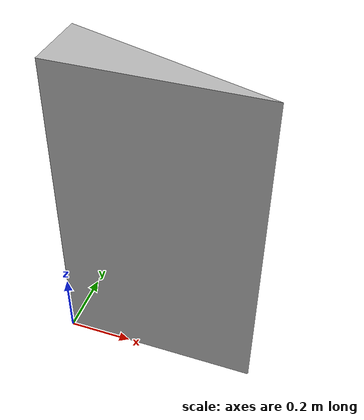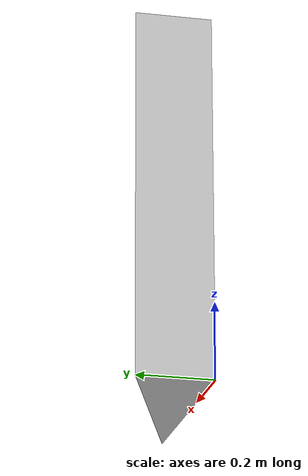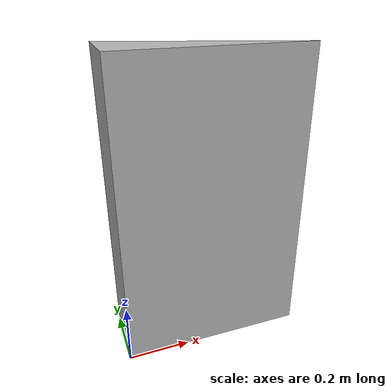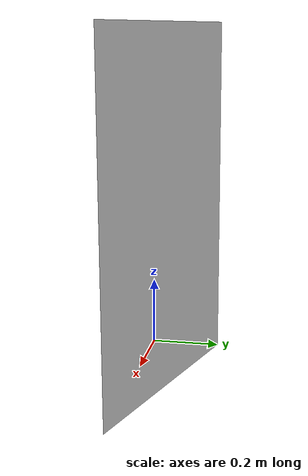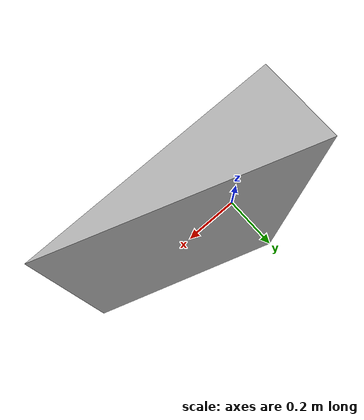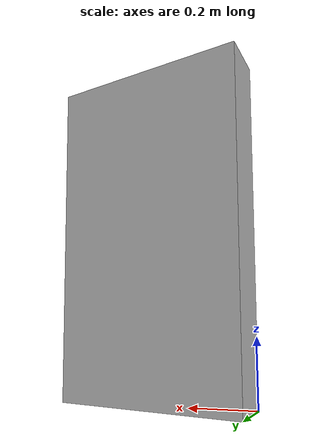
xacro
<?xml version="1.0" ?>
<robot name="Bridge" xmlns:xacro="http://www.ros.org/wiki/xacro">

<xacro:include filename="$(find Bridge_description)/urdf/materials.xacro" />
<xacro:include filename="$(find Bridge_description)/urdf/Bridge.trans" />
<xacro:include filename="$(find Bridge_description)/urdf/Bridge.gazebo" />
<link name="base_link">
  <inertial>
    <origin xyz="0.2 0.0666666666666667 0.4875" rpy="0 0 0"/>
    <mass value="459.225"/>
    <inertia ixx="37.39973" iyy="45.56373" izz="10.205" ixy="1.53075" iyz="0.0" ixz="0.0"/>
  </inertial>
  <visual>
    <origin xyz="0 0 0" rpy="0 0 0"/>
    <geometry>
      <mesh filename="package://Bridge_description/meshes/base_link.stl" scale="0.001 0.001 0.001"/>
    </geometry>
    <material name="silver"/>
  </visual>
  <collision>
    <origin xyz="0 0 0" rpy="0 0 0"/>
    <geometry>
      <mesh filename="package://Bridge_description/meshes/base_link.stl" scale="0.001 0.001 0.001"/>
    </geometry>
  </collision>
</link>

</robot>

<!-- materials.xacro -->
<robot name="Bridge" xmlns:xacro="http://www.ros.org/wiki/xacro" >

<material name="silver">
  <color rgba="0.700 0.700 0.700 1.000"/>
</material>

</robot>

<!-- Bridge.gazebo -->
<robot name="Bridge" xmlns:xacro="http://www.ros.org/wiki/xacro" >

<xacro:property name="body_color" value="Gazebo/Silver" />

<gazebo>
  <plugin name="control" filename="libgazebo_ros_control.so"/>
</gazebo>
<gazebo reference="base_link">
  <material>${body_color}</material>
  <mu1>0.2</mu1>
  <mu2>0.2</mu2>
  <selfCollide>true</selfCollide>
  <gravity>true</gravity>
</gazebo>

</robot>
